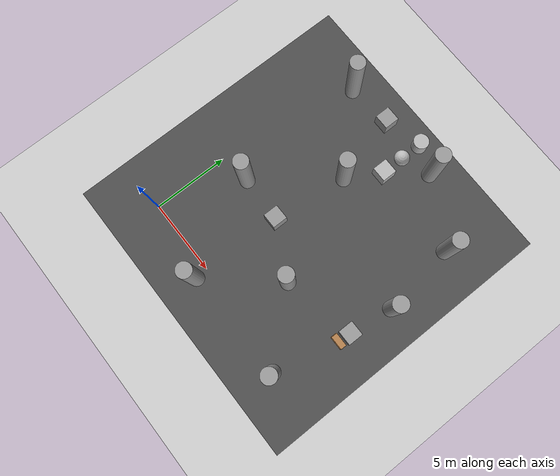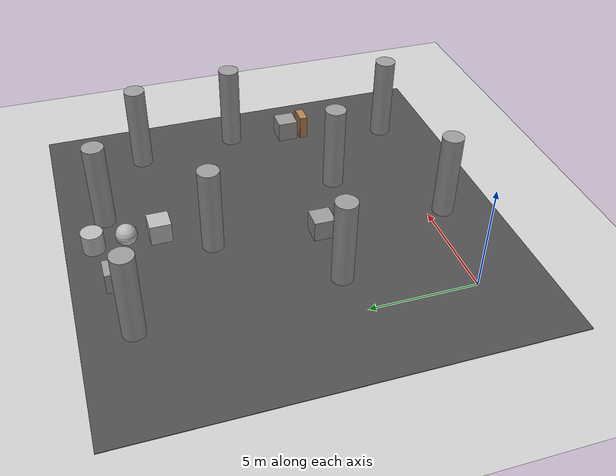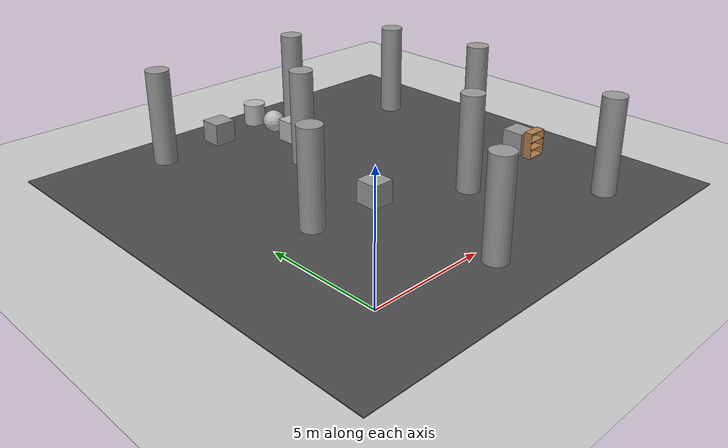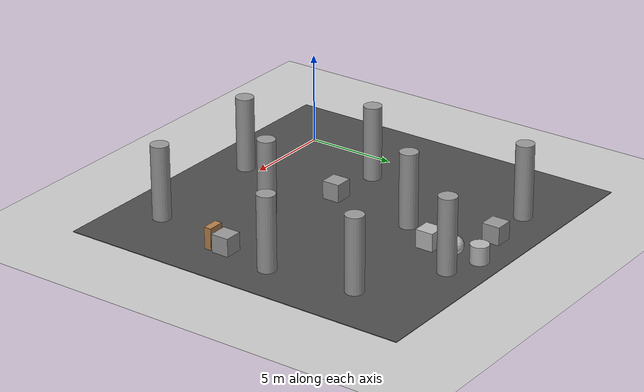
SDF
<sdf version="1.6">
 <world name="default">
  <light name="sun" type="directional">
   <cast_shadows>0</cast_shadows>
   <pose>0 0 10 0 -0 0</pose>
   <diffuse>0.8 0.8 0.8 1</diffuse>
   <specular>0.2 0.2 0.2 1</specular>
   <attenuation>
    <range>1000</range>
    <constant>0.9</constant>
    <linear>0.01</linear>
    <quadratic>0.001</quadratic>
   </attenuation>
   <direction>-0.5 0.1 -0.9</direction>
  </light>
  <model name="ground_plane">
   <static>1</static>
   <link name="link">
    <collision name="collision">
     <geometry><plane><normal>0 0 1</normal><size>100 100</size></plane></geometry>
     <surface><friction><ode><mu>100</mu><mu2>50</mu2></ode></friction></surface>
    </collision>
    <visual name="visual">
     <cast_shadows>0</cast_shadows>
     <geometry><plane><normal>0 0 1</normal><size>100 100</size></plane></geometry>
     <material>
      <script><uri>file://media/materials/scripts/gazebo.material</uri><name>Gazebo/Grey</name></script>
     </material>
    </visual>
   </link>
  </model>
  <gravity>0 0 -9.8</gravity>
  <magnetic_field>6e-06 2.3e-05 -4.2e-05</magnetic_field>
  <atmosphere type="adiabatic"/>
  <physics name="default_physics" default="0" type="ode">
   <max_step_size>0.001</max_step_size>
   <real_time_factor>1</real_time_factor>
   <real_time_update_rate>1000</real_time_update_rate>
  </physics>
  <scene><ambient>0.4 0.4 0.4 1</ambient><background>0.7 0.7 0.7 1</background><shadows>0</shadows></scene>
  <spherical_coordinates>
   <surface_model>EARTH_WGS84</surface_model>
   <latitude_deg>0</latitude_deg>
   <longitude_deg>0</longitude_deg>
   <elevation>0</elevation>
   <heading_deg>0</heading_deg>
  </spherical_coordinates>
  <model name="asphalt_plane">
   <static>1</static>
   <link name="link">
    <collision name="collision"><geometry><box><size>20 20 0.1</size></box></geometry></collision>
    <visual name="visual">
     <cast_shadows>0</cast_shadows>
     <geometry><box><size>20 20 0.1</size></box></geometry>
     <material>
      <script>
       <uri>model://asphalt_plane/materials/scripts</uri>
       <uri>model://asphalt_plane/materials/textures</uri>
       <name>vrc/asphalt</name>
      </script>
     </material>
    </visual>
   </link>
   <pose>6.31642 6.72384 -0.04 0 -0 0</pose>
  </model>
  <model name="unit_cylinder">
   <pose>2.11757 5.40165 2.09282 9e-06 -4e-06 -0.001039</pose>
   <link name="link">
    <inertial>
     <mass>1</mass>
     <inertia><ixx>0.145833</ixx><ixy>0</ixy><ixz>0</ixz><iyy>0.145833</iyy><iyz>0</iyz><izz>0.125</izz></inertia>
    </inertial>
    <collision name="collision">
     <geometry><cylinder><radius>0.5</radius><length>4.16563</length></cylinder></geometry>
    </collision>
    <visual name="visual">
     <geometry><cylinder><radius>0.5</radius><length>4.16563</length></cylinder></geometry>
     <material>
      <script><name>Gazebo/Grey</name><uri>file://media/materials/scripts/gazebo.material</uri></script>
     </material>
    </visual>
   </link>
  </model>
  <model name="unit_cylinder_clone">
   <pose>8.80091 3.43566 2.09282 1.1e-05 -4e-06 -0.001051</pose>
   <link name="link">
    <inertial>
     <mass>1</mass>
     <inertia><ixx>0.145833</ixx><ixy>0</ixy><ixz>0</ixz><iyy>0.145833</iyy><iyz>0</iyz><izz>0.125</izz></inertia>
    </inertial>
    <collision name="collision">
     <geometry><cylinder><radius>0.5</radius><length>4.16563</length></cylinder></geometry>
    </collision>
    <visual name="visual">
     <geometry><cylinder><radius>0.5</radius><length>4.16563</length></cylinder></geometry>
     <material>
      <script><name>Gazebo/Grey</name><uri>file://media/materials/scripts/gazebo.material</uri></script>
     </material>
    </visual>
   </link>
  </model>
  <model name="unit_cylinder_clone_0">
   <pose>5.83193 10.2439 2.09282 9e-06 -3e-06 -0.000198</pose>
   <link name="link">
    <inertial>
     <mass>1</mass>
     <inertia><ixx>0.145833</ixx><ixy>0</ixy><ixz>0</ixz><iyy>0.145833</iyy><iyz>0</iyz><izz>0.125</izz></inertia>
    </inertial>
    <collision name="collision">
     <geometry><cylinder><radius>0.5</radius><length>4.16563</length></cylinder></geometry>
    </collision>
    <visual name="visual">
     <geometry><cylinder><radius>0.5</radius><length>4.16563</length></cylinder></geometry>
     <material>
      <script><name>Gazebo/Grey</name><uri>file://media/materials/scripts/gazebo.material</uri></script>
     </material>
    </visual>
   </link>
  </model>
  <model name="unit_cylinder_clone_1">
   <pose>13.3153 12.1901 2.09281 0 1e-06 0.004338</pose>
   <link name="link">
    <inertial>
     <mass>1</mass>
     <inertia><ixx>0.145833</ixx><ixy>0</ixy><ixz>0</ixz><iyy>0.145833</iyy><iyz>0</iyz><izz>0.125</izz></inertia>
    </inertial>
    <collision name="collision">
     <geometry><cylinder><radius>0.5</radius><length>4.16563</length></cylinder></geometry>
    </collision>
    <visual name="visual">
     <geometry><cylinder><radius>0.5</radius><length>4.16563</length></cylinder></geometry>
     <material>
      <script><name>Gazebo/Grey</name><uri>file://media/materials/scripts/gazebo.material</uri></script>
     </material>
    </visual>
   </link>
  </model>
  <model name="unit_cylinder_clone_clone">
   <pose>13.9429 7.32798 2.09281 1e-06 -0 0.00284</pose>
   <link name="link">
    <inertial>
     <mass>1</mass>
     <inertia><ixx>0.145833</ixx><ixy>0</ixy><ixz>0</ixz><iyy>0.145833</iyy><iyz>0</iyz><izz>0.125</izz></inertia>
    </inertial>
    <collision name="collision">
     <geometry><cylinder><radius>0.5</radius><length>4.16563</length></cylinder></geometry>
    </collision>
    <visual name="visual">
     <geometry><cylinder><radius>0.5</radius><length>4.16563</length></cylinder></geometry>
     <material>
      <script><name>Gazebo/Grey</name><uri>file://media/materials/scripts/gazebo.material</uri></script>
     </material>
    </visual>
   </link>
  </model>
  <model name="unit_cylinder_clone_clone_0">
   <pose>1.56833 14.5029 2.09281 0 0 -0.000129</pose>
   <link name="link">
    <inertial>
     <mass>1</mass>
     <inertia><ixx>0.145833</ixx><ixy>0</ixy><ixz>0</ixz><iyy>0.145833</iyy><iyz>0</iyz><izz>0.125</izz></inertia>
    </inertial>
    <collision name="collision">
     <geometry><cylinder><radius>0.5</radius><length>4.16563</length></cylinder></geometry>
    </collision>
    <visual name="visual">
     <geometry><cylinder><radius>0.5</radius><length>4.16563</length></cylinder></geometry>
     <material>
      <script><name>Gazebo/Grey</name><uri>file://media/materials/scripts/gazebo.material</uri></script>
     </material>
    </visual>
   </link>
  </model>
  <model name="unit_cylinder_clone_clone_1">
   <pose>9.01069 14.693 2.09281 2e-06 -1e-06 0.003997</pose>
   <link name="link">
    <inertial>
     <mass>1</mass>
     <inertia><ixx>0.145833</ixx><ixy>0</ixy><ixz>0</ixz><iyy>0.145833</iyy><iyz>0</iyz><izz>0.125</izz></inertia>
    </inertial>
    <collision name="collision">
     <geometry><cylinder><radius>0.5</radius><length>4.16563</length></cylinder></geometry>
    </collision>
    <visual name="visual">
     <geometry><cylinder><radius>0.5</radius><length>4.16563</length></cylinder></geometry>
     <material>
      <script><name>Gazebo/Grey</name><uri>file://media/materials/scripts/gazebo.material</uri></script>
     </material>
    </visual>
   </link>
  </model>
  <model name="unit_cylinder_clone_clone_2">
   <pose>12.4663 -0.590974 2.09282 1e-05 -4e-06 -0.001022</pose>
   <link name="link">
    <inertial>
     <mass>1</mass>
     <inertia><ixx>0.145833</ixx><ixy>0</ixy><ixz>0</ixz><iyy>0.145833</iyy><iyz>0</iyz><izz>0.125</izz></inertia>
    </inertial>
    <collision name="collision">
     <geometry><cylinder><radius>0.5</radius><length>4.16563</length></cylinder></geometry>
    </collision>
    <visual name="visual">
     <geometry><cylinder><radius>0.5</radius><length>4.16563</length></cylinder></geometry>
     <material>
      <script><name>Gazebo/Grey</name><uri>file://media/materials/scripts/gazebo.material</uri></script>
     </material>
    </visual>
   </link>
  </model>
  <model name="unit_cylinder_clone_clone_3">
   <pose>5.11898 -0.801202 2.09281 2e-06 1.2e-05 0.140892</pose>
   <link name="link">
    <inertial>
     <mass>1</mass>
     <inertia><ixx>0.145833</ixx><ixy>0</ixy><ixz>0</ixz><iyy>0.145833</iyy><iyz>0</iyz><izz>0.125</izz></inertia>
    </inertial>
    <collision name="collision">
     <geometry><cylinder><radius>0.5</radius><length>4.16563</length></cylinder></geometry>
    </collision>
    <visual name="visual">
     <geometry><cylinder><radius>0.5</radius><length>4.16563</length></cylinder></geometry>
     <material>
      <script><name>Gazebo/Grey</name><uri>file://media/materials/scripts/gazebo.material</uri></script>
     </material>
    </visual>
   </link>
  </model>
  <model name="unit_box">
   <pose>5.2405 5.27226 0.51 0 -0 4.7e-05</pose>
   <link name="link">
    <inertial>
     <mass>1</mass>
     <inertia>
      <ixx>0.166667</ixx>
      <ixy>0</ixy>
      <ixz>0</ixz>
      <iyy>0.166667</iyy>
      <iyz>0</iyz>
      <izz>0.166667</izz>
     </inertia>
    </inertial>
    <collision name="collision"><geometry><box><size>1 1 1</size></box></geometry></collision>
    <visual name="visual">
     <geometry><box><size>1 1 1</size></box></geometry>
     <material>
      <script><name>Gazebo/Grey</name><uri>file://media/materials/scripts/gazebo.material</uri></script>
     </material>
    </visual>
   </link>
  </model>
  <model name="unit_box_0">
   <pose>4.60381 14.7569 0.51 0 -0 4.7e-05</pose>
   <link name="link">
    <inertial>
     <mass>1</mass>
     <inertia>
      <ixx>0.166667</ixx>
      <ixy>0</ixy>
      <ixz>0</ixz>
      <iyy>0.166667</iyy>
      <iyz>0</iyz>
      <izz>0.166667</izz>
     </inertia>
    </inertial>
    <collision name="collision"><geometry><box><size>1 1 1</size></box></geometry></collision>
    <visual name="visual">
     <geometry><box><size>1 1 1</size></box></geometry>
     <material>
      <script><name>Gazebo/Grey</name><uri>file://media/materials/scripts/gazebo.material</uri></script>
     </material>
    </visual>
   </link>
  </model>
  <model name="unit_box_1">
   <pose>13.5369 4.43548 0.51 0 -0 4.7e-05</pose>
   <link name="link">
    <inertial>
     <mass>1</mass>
     <inertia>
      <ixx>0.166667</ixx>
      <ixy>0</ixy>
      <ixz>0</ixz>
      <iyy>0.166667</iyy>
      <iyz>0</iyz>
      <izz>0.166667</izz>
     </inertia>
    </inertial>
    <collision name="collision"><geometry><box><size>1 1 1</size></box></geometry></collision>
    <visual name="visual">
     <geometry><box><size>1 1 1</size></box></geometry>
     <material>
      <script><name>Gazebo/Grey</name><uri>file://media/materials/scripts/gazebo.material</uri></script>
     </material>
    </visual>
   </link>
  </model>
  <model name="bookshelf">
   <static>1</static>
   <link name="link">
    <inertial><mass>1</mass></inertial>
    <collision name="back">
     <pose>0 0.005 0.6 0 -0 0</pose>
     <geometry><box><size>0.9 0.01 1.2</size></box></geometry>
    </collision>
    <visual name="visual1">
     <pose>0 0.005 0.6 0 -0 0</pose>
     <geometry><box><size>0.9 0.01 1.2</size></box></geometry>
     <material>
      <script><uri>file://media/materials/scripts/gazebo.material</uri><name>Gazebo/Wood</name></script>
     </material>
    </visual>
    <collision name="left_side">
     <pose>0.45 -0.195 0.6 0 -0 0</pose>
     <geometry><box><size>0.02 0.4 1.2</size></box></geometry>
    </collision>
    <visual name="visual2">
     <pose>0.45 -0.195 0.6 0 -0 0</pose>
     <geometry><box><size>0.02 0.4 1.2</size></box></geometry>
     <material>
      <script><uri>file://media/materials/scripts/gazebo.material</uri><name>Gazebo/Wood</name></script>
     </material>
    </visual>
    <collision name="right_side">
     <pose>-0.45 -0.195 0.6 0 -0 0</pose>
     <geometry><box><size>0.02 0.4 1.2</size></box></geometry>
    </collision>
    <visual name="visual3">
     <pose>-0.45 -0.195 0.6 0 -0 0</pose>
     <geometry><box><size>0.02 0.4 1.2</size></box></geometry>
     <material>
      <script><uri>file://media/materials/scripts/gazebo.material</uri><name>Gazebo/Wood</name></script>
     </material>
    </visual>
    <collision name="bottom">
     <pose>0 -0.195 0.03 0 -0 0</pose>
     <geometry><box><size>0.88 0.4 0.06</size></box></geometry>
    </collision>
    <visual name="visual4">
     <pose>0 -0.195 0.03 0 -0 0</pose>
     <geometry><box><size>0.88 0.4 0.06</size></box></geometry>
     <material>
      <script><uri>file://media/materials/scripts/gazebo.material</uri><name>Gazebo/Wood</name></script>
     </material>
    </visual>
    <collision name="top">
     <pose>0 -0.195 1.19 0 -0 0</pose>
     <geometry><box><size>0.88 0.4 0.02</size></box></geometry>
    </collision>
    <visual name="visual5">
     <pose>0 -0.195 1.19 0 -0 0</pose>
     <geometry><box><size>0.88 0.4 0.02</size></box></geometry>
     <material>
      <script><uri>file://media/materials/scripts/gazebo.material</uri><name>Gazebo/Wood</name></script>
     </material>
    </visual>
    <collision name="low_shelf">
     <pose>0 -0.195 0.43 0 -0 0</pose>
     <geometry><box><size>0.88 0.4 0.02</size></box></geometry>
    </collision>
    <visual name="visual6">
     <pose>0 -0.195 0.43 0 -0 0</pose>
     <geometry><box><size>0.88 0.4 0.02</size></box></geometry>
     <material>
      <script><uri>file://media/materials/scripts/gazebo.material</uri><name>Gazebo/Wood</name></script>
     </material>
    </visual>
    <collision name="high_shelf">
     <pose>0 -0.195 0.8 0 -0 0</pose>
     <geometry><box><size>0.88 0.4 0.02</size></box></geometry>
    </collision>
    <visual name="visual7">
     <pose>0 -0.195 0.8 0 -0 0</pose>
     <geometry><box><size>0.88 0.4 0.02</size></box></geometry>
     <material>
      <script><uri>file://media/materials/scripts/gazebo.material</uri><name>Gazebo/Wood</name></script>
     </material>
    </visual>
   </link>
   <pose>13.4657 3.78001 0 0 -0 0</pose>
  </model>
  <model name="textured_shapes">
   <pose>7.14914 13.9214 0.51 -0 -0 -0</pose>
   <link name="box">
    <pose>0 -1.5 0 0 -0 0</pose>
    <collision name="collision"><geometry><box><size>1 1 1</size></box></geometry></collision>
    <visual name="visual">
     <geometry><box><size>1 1 1</size></box></geometry>
     <material>
      <script>
       <uri>model://textured_shapes/materials/scripts</uri>
       <uri>model://textured_shapes/materials/textures</uri>
       <name>TexturedShape/Squares</name>
      </script>
     </material>
    </visual>
    <inertial>
     <inertia><ixx>1</ixx><ixy>0</ixy><ixz>0</ixz><iyy>1</iyy><iyz>0</iyz><izz>1</izz></inertia>
     <mass>1</mass>
    </inertial>
   </link>
   <link name="sphere">
    <collision name="collision"><geometry><sphere><radius>0.5</radius></sphere></geometry></collision>
    <visual name="visual">
     <geometry><sphere><radius>0.5</radius></sphere></geometry>
     <material>
      <script>
       <uri>model://textured_shapes/materials/scripts</uri>
       <uri>model://textured_shapes/materials/textures</uri>
       <name>TexturedShape/Squares</name>
      </script>
     </material>
    </visual>
    <inertial>
     <inertia><ixx>1</ixx><ixy>0</ixy><ixz>0</ixz><iyy>1</iyy><iyz>0</iyz><izz>1</izz></inertia>
     <mass>1</mass>
    </inertial>
   </link>
   <link name="cylinder">
    <pose>0 1.5 0 0 -0 0</pose>
    <collision name="collision">
     <geometry><cylinder><radius>0.5</radius><length>1</length></cylinder></geometry>
    </collision>
    <visual name="visual">
     <geometry><cylinder><radius>0.5</radius><length>1</length></cylinder></geometry>
     <material>
      <script>
       <uri>model://textured_shapes/materials/scripts</uri>
       <uri>model://textured_shapes/materials/textures</uri>
       <name>TexturedShape/Squares</name>
      </script>
     </material>
    </visual>
    <inertial>
     <inertia><ixx>1</ixx><ixy>0</ixy><ixz>0</ixz><iyy>1</iyy><iyz>0</iyz><izz>1</izz></inertia>
     <mass>1</mass>
    </inertial>
   </link>
  </model>
 </world>
</sdf>
